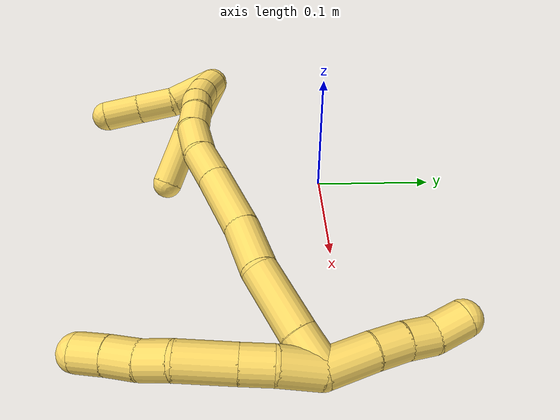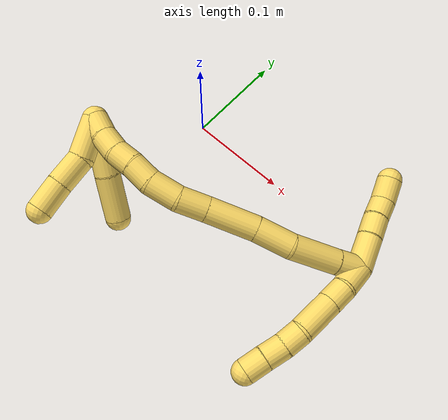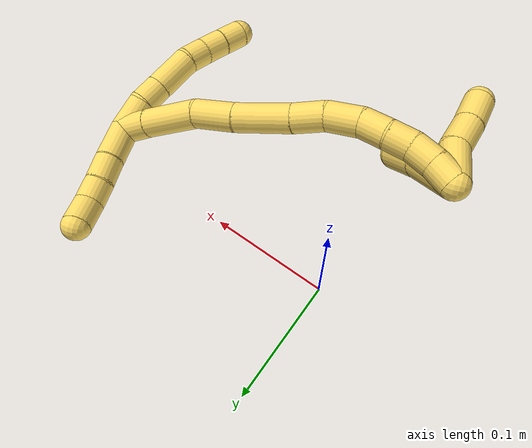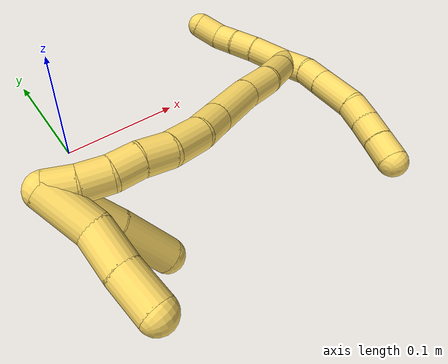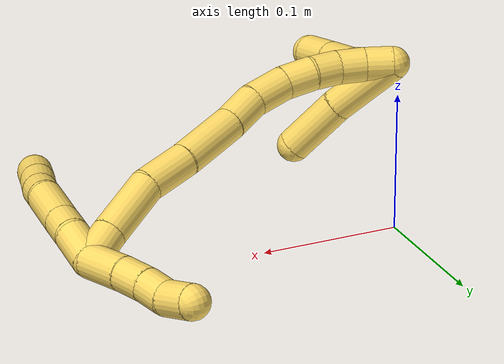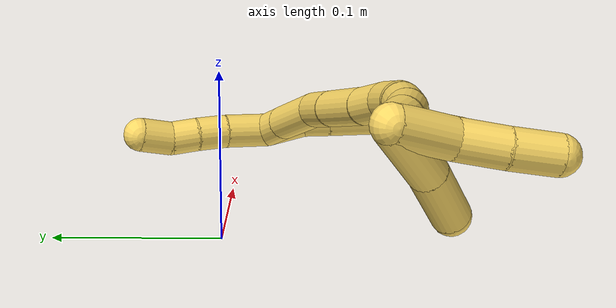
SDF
<sdf version="1.7">
 <world name="default">
  <model name="5">
   <static>0</static>
   <link name="5">
    <collision name="collision-cylinder-e_1_2_8">
     <pose>-0.013197 -0.004792 -0.003114 2.14697 -1.16212 -1.76008</pose>
     <geometry><cylinder><radius>0.0125</radius><length>0.028762</length></cylinder></geometry>
     <surface>
      <friction><ode><mu>1.16</mu><mu2>1.16</mu2><slip1>0</slip1><slip2>0</slip2></ode></friction>
      <contact><ode><kp>1e+06</kp><kd>1</kd><max_vel>0</max_vel><min_depth>0.001</min_depth></ode></contact>
     </surface>
    </collision>
    <visual name="visual-cylinder-e_1_2_8">
     <pose>-0.013197 -0.004792 -0.003114 2.14697 -1.16212 -1.76008</pose>
     <geometry><cylinder><radius>0.0125</radius><length>0.028762</length></cylinder></geometry>
     <material><ambient>1 0.858824 0.4 1</ambient></material>
    </visual>
    <collision name="collision-cylinder-e_2_8_9">
     <pose>-0.034774 -0.014955 -0.009597 2.13115 -0.923188 -1.46491</pose>
     <geometry><cylinder><radius>0.0125</radius><length>0.021018</length></cylinder></geometry>
     <surface>
      <friction><ode><mu>1.16</mu><mu2>1.16</mu2><slip1>0</slip1><slip2>0</slip2></ode></friction>
      <contact><ode><kp>1e+06</kp><kd>1</kd><max_vel>0</max_vel><min_depth>0.001</min_depth></ode></contact>
     </surface>
    </collision>
    <visual name="visual-cylinder-e_2_8_9">
     <pose>-0.034774 -0.014955 -0.009597 2.13115 -0.923188 -1.46491</pose>
     <geometry><cylinder><radius>0.0125</radius><length>0.021018</length></cylinder></geometry>
     <material><ambient>1 0.858824 0.4 1</ambient></material>
    </visual>
    <collision name="collision-cylinder-e_3_9_10">
     <pose>-0.058345 -0.029752 -0.019131 2.14996 -0.932719 -1.49903</pose>
     <geometry><cylinder><radius>0.0125</radius><length>0.037821</length></cylinder></geometry>
     <surface>
      <friction><ode><mu>1.16</mu><mu2>1.16</mu2><slip1>0</slip1><slip2>0</slip2></ode></friction>
      <contact><ode><kp>1e+06</kp><kd>1</kd><max_vel>0</max_vel><min_depth>0.001</min_depth></ode></contact>
     </surface>
    </collision>
    <visual name="visual-cylinder-e_3_9_10">
     <pose>-0.058345 -0.029752 -0.019131 2.14996 -0.932719 -1.49903</pose>
     <geometry><cylinder><radius>0.0125</radius><length>0.037821</length></cylinder></geometry>
     <material><ambient>1 0.858824 0.4 1</ambient></material>
    </visual>
    <collision name="collision-cylinder-e_4_10_11">
     <pose>-0.079868 -0.045809 -0.02965 2.15188 -0.673834 -1.15146</pose>
     <geometry><cylinder><radius>0.0125</radius><length>0.020301</length></cylinder></geometry>
     <surface>
      <friction><ode><mu>1.16</mu><mu2>1.16</mu2><slip1>0</slip1><slip2>0</slip2></ode></friction>
      <contact><ode><kp>1e+06</kp><kd>1</kd><max_vel>0</max_vel><min_depth>0.001</min_depth></ode></contact>
     </surface>
    </collision>
    <visual name="visual-cylinder-e_4_10_11">
     <pose>-0.079868 -0.045809 -0.02965 2.15188 -0.673834 -1.15146</pose>
     <geometry><cylinder><radius>0.0125</radius><length>0.020301</length></cylinder></geometry>
     <material><ambient>1 0.858824 0.4 1</ambient></material>
    </visual>
    <collision name="collision-cylinder-e_5_11_12">
     <pose>-0.092787 -0.05837 -0.039509 2.31893 -0.683055 -1.36747</pose>
     <geometry><cylinder><radius>0.0125</radius><length>0.020864</length></cylinder></geometry>
     <surface>
      <friction><ode><mu>1.16</mu><mu2>1.16</mu2><slip1>0</slip1><slip2>0</slip2></ode></friction>
      <contact><ode><kp>1e+06</kp><kd>1</kd><max_vel>0</max_vel><min_depth>0.001</min_depth></ode></contact>
     </surface>
    </collision>
    <visual name="visual-cylinder-e_5_11_12">
     <pose>-0.092787 -0.05837 -0.039509 2.31893 -0.683055 -1.36747</pose>
     <geometry><cylinder><radius>0.0125</radius><length>0.020864</length></cylinder></geometry>
     <material><ambient>1 0.858824 0.4 1</ambient></material>
    </visual>
    <collision name="collision-cylinder-e_6_12_6">
     <pose>-0.10595 -0.070712 -0.050338 2.26387 -0.668271 -1.2736</pose>
     <geometry><cylinder><radius>0.0125</radius><length>0.021235</length></cylinder></geometry>
     <surface>
      <friction><ode><mu>1.16</mu><mu2>1.16</mu2><slip1>0</slip1><slip2>0</slip2></ode></friction>
      <contact><ode><kp>1e+06</kp><kd>1</kd><max_vel>0</max_vel><min_depth>0.001</min_depth></ode></contact>
     </surface>
    </collision>
    <visual name="visual-cylinder-e_6_12_6">
     <pose>-0.10595 -0.070712 -0.050338 2.26387 -0.668271 -1.2736</pose>
     <geometry><cylinder><radius>0.0125</radius><length>0.021235</length></cylinder></geometry>
     <material><ambient>1 0.858824 0.4 1</ambient></material>
    </visual>
    <collision name="collision-cylinder-e_1_2_13">
     <pose>0.013403 0.010213 -0.001342 -1.70148 0.915543 -1.02351</pose>
     <geometry><cylinder><radius>0.0125</radius><length>0.033807</length></cylinder></geometry>
     <surface>
      <friction><ode><mu>1.16</mu><mu2>1.16</mu2><slip1>0</slip1><slip2>0</slip2></ode></friction>
      <contact><ode><kp>1e+06</kp><kd>1</kd><max_vel>0</max_vel><min_depth>0.001</min_depth></ode></contact>
     </surface>
    </collision>
    <visual name="visual-cylinder-e_1_2_13">
     <pose>0.013403 0.010213 -0.001342 -1.70148 0.915543 -1.02351</pose>
     <geometry><cylinder><radius>0.0125</radius><length>0.033807</length></cylinder></geometry>
     <material><ambient>1 0.858824 0.4 1</ambient></material>
    </visual>
    <collision name="collision-cylinder-e_2_13_14">
     <pose>0.036098 0.026418 -0.0036 -1.72242 0.99271 -1.12525</pose>
     <geometry><cylinder><radius>0.0125</radius><length>0.022191</length></cylinder></geometry>
     <surface>
      <friction><ode><mu>1.16</mu><mu2>1.16</mu2><slip1>0</slip1><slip2>0</slip2></ode></friction>
      <contact><ode><kp>1e+06</kp><kd>1</kd><max_vel>0</max_vel><min_depth>0.001</min_depth></ode></contact>
     </surface>
    </collision>
    <visual name="visual-cylinder-e_2_13_14">
     <pose>0.036098 0.026418 -0.0036 -1.72242 0.99271 -1.12525</pose>
     <geometry><cylinder><radius>0.0125</radius><length>0.022191</length></cylinder></geometry>
     <material><ambient>1 0.858824 0.4 1</ambient></material>
    </visual>
    <collision name="collision-cylinder-e_3_14_15">
     <pose>0.054184 0.037334 -0.004599 -1.58758 1.06047 -1.07518</pose>
     <geometry><cylinder><radius>0.0125</radius><length>0.020156</length></cylinder></geometry>
     <surface>
      <friction><ode><mu>1.16</mu><mu2>1.16</mu2><slip1>0</slip1><slip2>0</slip2></ode></friction>
      <contact><ode><kp>1e+06</kp><kd>1</kd><max_vel>0</max_vel><min_depth>0.001</min_depth></ode></contact>
     </surface>
    </collision>
    <visual name="visual-cylinder-e_3_14_15">
     <pose>0.054184 0.037334 -0.004599 -1.58758 1.06047 -1.07518</pose>
     <geometry><cylinder><radius>0.0125</radius><length>0.020156</length></cylinder></geometry>
     <material><ambient>1 0.858824 0.4 1</ambient></material>
    </visual>
    <collision name="collision-cylinder-e_4_15_5">
     <pose>0.071074 0.050905 -0.006024 -1.72484 0.746449 -0.857437</pose>
     <geometry><cylinder><radius>0.0125</radius><length>0.023846</length></cylinder></geometry>
     <surface>
      <friction><ode><mu>1.16</mu><mu2>1.16</mu2><slip1>0</slip1><slip2>0</slip2></ode></friction>
      <contact><ode><kp>1e+06</kp><kd>1</kd><max_vel>0</max_vel><min_depth>0.001</min_depth></ode></contact>
     </surface>
    </collision>
    <visual name="visual-cylinder-e_4_15_5">
     <pose>0.071074 0.050905 -0.006024 -1.72484 0.746449 -0.857437</pose>
     <geometry><cylinder><radius>0.0125</radius><length>0.023846</length></cylinder></geometry>
     <material><ambient>1 0.858824 0.4 1</ambient></material>
    </visual>
    <collision name="collision-cylinder-e_1_2_16">
     <pose>-0.005792 0.001954 -0.011271 -2.96995 -0.468717 2.44985</pose>
     <geometry><cylinder><radius>0.0125</radius><length>0.025644</length></cylinder></geometry>
     <surface>
      <friction><ode><mu>1.16</mu><mu2>1.16</mu2><slip1>0</slip1><slip2>0</slip2></ode></friction>
      <contact><ode><kp>1e+06</kp><kd>1</kd><max_vel>0</max_vel><min_depth>0.001</min_depth></ode></contact>
     </surface>
    </collision>
    <visual name="visual-cylinder-e_1_2_16">
     <pose>-0.005792 0.001954 -0.011271 -2.96995 -0.468717 2.44985</pose>
     <geometry><cylinder><radius>0.0125</radius><length>0.025644</length></cylinder></geometry>
     <material><ambient>1 0.858824 0.4 1</ambient></material>
    </visual>
    <collision name="collision-cylinder-e_2_16_17">
     <pose>-0.021368 0.007659 -0.044097 -2.9693 -0.420509 2.37252</pose>
     <geometry><cylinder><radius>0.0125</radius><length>0.047933</length></cylinder></geometry>
     <surface>
      <friction><ode><mu>1.16</mu><mu2>1.16</mu2><slip1>0</slip1><slip2>0</slip2></ode></friction>
      <contact><ode><kp>1e+06</kp><kd>1</kd><max_vel>0</max_vel><min_depth>0.001</min_depth></ode></contact>
     </surface>
    </collision>
    <visual name="visual-cylinder-e_2_16_17">
     <pose>-0.021368 0.007659 -0.044097 -2.9693 -0.420509 2.37252</pose>
     <geometry><cylinder><radius>0.0125</radius><length>0.047933</length></cylinder></geometry>
     <material><ambient>1 0.858824 0.4 1</ambient></material>
    </visual>
    <collision name="collision-cylinder-e_3_17_18">
     <pose>-0.033934 0.013914 -0.083352 -3.00104 -0.154399 1.66495</pose>
     <geometry><cylinder><radius>0.0125</radius><length>0.036185</length></cylinder></geometry>
     <surface>
      <friction><ode><mu>1.16</mu><mu2>1.16</mu2><slip1>0</slip1><slip2>0</slip2></ode></friction>
      <contact><ode><kp>1e+06</kp><kd>1</kd><max_vel>0</max_vel><min_depth>0.001</min_depth></ode></contact>
     </surface>
    </collision>
    <visual name="visual-cylinder-e_3_17_18">
     <pose>-0.033934 0.013914 -0.083352 -3.00104 -0.154399 1.66495</pose>
     <geometry><cylinder><radius>0.0125</radius><length>0.036185</length></cylinder></geometry>
     <material><ambient>1 0.858824 0.4 1</ambient></material>
    </visual>
    <collision name="collision-cylinder-e_4_18_19">
     <pose>-0.042557 0.018575 -0.124801 -3.05105 -0.240182 2.42332</pose>
     <geometry><cylinder><radius>0.0125</radius><length>0.049101</length></cylinder></geometry>
     <surface>
      <friction><ode><mu>1.16</mu><mu2>1.16</mu2><slip1>0</slip1><slip2>0</slip2></ode></friction>
      <contact><ode><kp>1e+06</kp><kd>1</kd><max_vel>0</max_vel><min_depth>0.001</min_depth></ode></contact>
     </surface>
    </collision>
    <visual name="visual-cylinder-e_4_18_19">
     <pose>-0.042557 0.018575 -0.124801 -3.05105 -0.240182 2.42332</pose>
     <geometry><cylinder><radius>0.0125</radius><length>0.049101</length></cylinder></geometry>
     <material><ambient>1 0.858824 0.4 1</ambient></material>
    </visual>
    <collision name="collision-cylinder-e_5_19_20">
     <pose>-0.052803 0.022328 -0.161694 -3.02065 -0.321201 2.42626</pose>
     <geometry><cylinder><radius>0.0125</radius><length>0.027911</length></cylinder></geometry>
     <surface>
      <friction><ode><mu>1.16</mu><mu2>1.16</mu2><slip1>0</slip1><slip2>0</slip2></ode></friction>
      <contact><ode><kp>1e+06</kp><kd>1</kd><max_vel>0</max_vel><min_depth>0.001</min_depth></ode></contact>
     </surface>
    </collision>
    <visual name="visual-cylinder-e_5_19_20">
     <pose>-0.052803 0.022328 -0.161694 -3.02065 -0.321201 2.42626</pose>
     <geometry><cylinder><radius>0.0125</radius><length>0.027911</length></cylinder></geometry>
     <material><ambient>1 0.858824 0.4 1</ambient></material>
    </visual>
    <collision name="collision-cylinder-e_6_20_21">
     <pose>-0.058249 0.026425 -0.189097 -2.96806 -0.071771 0.782871</pose>
     <geometry><cylinder><radius>0.0125</radius><length>0.029025</length></cylinder></geometry>
     <surface>
      <friction><ode><mu>1.16</mu><mu2>1.16</mu2><slip1>0</slip1><slip2>0</slip2></ode></friction>
      <contact><ode><kp>1e+06</kp><kd>1</kd><max_vel>0</max_vel><min_depth>0.001</min_depth></ode></contact>
     </surface>
    </collision>
    <visual name="visual-cylinder-e_6_20_21">
     <pose>-0.058249 0.026425 -0.189097 -2.96806 -0.071771 0.782871</pose>
     <geometry><cylinder><radius>0.0125</radius><length>0.029025</length></cylinder></geometry>
     <material><ambient>1 0.858824 0.4 1</ambient></material>
    </visual>
    <collision name="collision-cylinder-e_7_21_22">
     <pose>-0.057388 0.032205 -0.214164 -2.84694 0.166778 -1.02587</pose>
     <geometry><cylinder><radius>0.0125</radius><length>0.022911</length></cylinder></geometry>
     <surface>
      <friction><ode><mu>1.16</mu><mu2>1.16</mu2><slip1>0</slip1><slip2>0</slip2></ode></friction>
      <contact><ode><kp>1e+06</kp><kd>1</kd><max_vel>0</max_vel><min_depth>0.001</min_depth></ode></contact>
     </surface>
    </collision>
    <visual name="visual-cylinder-e_7_21_22">
     <pose>-0.057388 0.032205 -0.214164 -2.84694 0.166778 -1.02587</pose>
     <geometry><cylinder><radius>0.0125</radius><length>0.022911</length></cylinder></geometry>
     <material><ambient>1 0.858824 0.4 1</ambient></material>
    </visual>
    <collision name="collision-cylinder-e_8_22_23">
     <pose>-0.05359 0.036809 -0.234799 -3.00776 0.188981 -1.9106</pose>
     <geometry><cylinder><radius>0.0125</radius><length>0.020186</length></cylinder></geometry>
     <surface>
      <friction><ode><mu>1.16</mu><mu2>1.16</mu2><slip1>0</slip1><slip2>0</slip2></ode></friction>
      <contact><ode><kp>1e+06</kp><kd>1</kd><max_vel>0</max_vel><min_depth>0.001</min_depth></ode></contact>
     </surface>
    </collision>
    <visual name="visual-cylinder-e_8_22_23">
     <pose>-0.05359 0.036809 -0.234799 -3.00776 0.188981 -1.9106</pose>
     <geometry><cylinder><radius>0.0125</radius><length>0.020186</length></cylinder></geometry>
     <material><ambient>1 0.858824 0.4 1</ambient></material>
    </visual>
    <collision name="collision-cylinder-e_9_23_24">
     <pose>-0.047792 0.040659 -0.253873 -2.87483 0.386478 -1.93947</pose>
     <geometry><cylinder><radius>0.0125</radius><length>0.020704</length></cylinder></geometry>
     <surface>
      <friction><ode><mu>1.16</mu><mu2>1.16</mu2><slip1>0</slip1><slip2>0</slip2></ode></friction>
      <contact><ode><kp>1e+06</kp><kd>1</kd><max_vel>0</max_vel><min_depth>0.001</min_depth></ode></contact>
     </surface>
    </collision>
    <visual name="visual-cylinder-e_9_23_24">
     <pose>-0.047792 0.040659 -0.253873 -2.87483 0.386478 -1.93947</pose>
     <geometry><cylinder><radius>0.0125</radius><length>0.020704</length></cylinder></geometry>
     <material><ambient>1 0.858824 0.4 1</ambient></material>
    </visual>
    <collision name="collision-cylinder-e_10_24_1">
     <pose>-0.038798 0.04652 -0.271308 -2.75485 0.52266 -1.87761</pose>
     <geometry><cylinder><radius>0.0125</radius><length>0.0204</length></cylinder></geometry>
     <surface>
      <friction><ode><mu>1.16</mu><mu2>1.16</mu2><slip1>0</slip1><slip2>0</slip2></ode></friction>
      <contact><ode><kp>1e+06</kp><kd>1</kd><max_vel>0</max_vel><min_depth>0.001</min_depth></ode></contact>
     </surface>
    </collision>
    <visual name="visual-cylinder-e_10_24_1">
     <pose>-0.038798 0.04652 -0.271308 -2.75485 0.52266 -1.87761</pose>
     <geometry><cylinder><radius>0.0125</radius><length>0.0204</length></cylinder></geometry>
     <material><ambient>1 0.858824 0.4 1</ambient></material>
    </visual>
    <collision name="collision-cylinder-e_1_1_25">
     <pose>-0.036701 0.026552 -0.266396 1.05871 -0.111542 -0.065302</pose>
     <geometry><cylinder><radius>0.0125</radius><length>0.053795</length></cylinder></geometry>
     <surface>
      <friction><ode><mu>1.16</mu><mu2>1.16</mu2><slip1>0</slip1><slip2>0</slip2></ode></friction>
      <contact><ode><kp>1e+06</kp><kd>1</kd><max_vel>0</max_vel><min_depth>0.001</min_depth></ode></contact>
     </surface>
    </collision>
    <visual name="visual-cylinder-e_1_1_25">
     <pose>-0.036701 0.026552 -0.266396 1.05871 -0.111542 -0.065302</pose>
     <geometry><cylinder><radius>0.0125</radius><length>0.053795</length></cylinder></geometry>
     <material><ambient>1 0.858824 0.4 1</ambient></material>
    </visual>
    <collision name="collision-cylinder-e_2_25_4">
     <pose>-0.04016 -0.01722 -0.242599 1.0892 -0.020158 -0.01221</pose>
     <geometry><cylinder><radius>0.0125</radius><length>0.046205</length></cylinder></geometry>
     <surface>
      <friction><ode><mu>1.16</mu><mu2>1.16</mu2><slip1>0</slip1><slip2>0</slip2></ode></friction>
      <contact><ode><kp>1e+06</kp><kd>1</kd><max_vel>0</max_vel><min_depth>0.001</min_depth></ode></contact>
     </surface>
    </collision>
    <visual name="visual-cylinder-e_2_25_4">
     <pose>-0.04016 -0.01722 -0.242599 1.0892 -0.020158 -0.01221</pose>
     <geometry><cylinder><radius>0.0125</radius><length>0.046205</length></cylinder></geometry>
     <material><ambient>1 0.858824 0.4 1</ambient></material>
    </visual>
    <collision name="collision-cylinder-e_1_1_26">
     <pose>-0.04591 0.034683 -0.277033 1.41004 -0.671076 -0.576912</pose>
     <geometry><cylinder><radius>0.0125</radius><length>0.039249</length></cylinder></geometry>
     <surface>
      <friction><ode><mu>1.16</mu><mu2>1.16</mu2><slip1>0</slip1><slip2>0</slip2></ode></friction>
      <contact><ode><kp>1e+06</kp><kd>1</kd><max_vel>0</max_vel><min_depth>0.001</min_depth></ode></contact>
     </surface>
    </collision>
    <visual name="visual-cylinder-e_1_1_26">
     <pose>-0.04591 0.034683 -0.277033 1.41004 -0.671076 -0.576912</pose>
     <geometry><cylinder><radius>0.0125</radius><length>0.039249</length></cylinder></geometry>
     <material><ambient>1 0.858824 0.4 1</ambient></material>
    </visual>
    <collision name="collision-cylinder-e_2_26_27">
     <pose>-0.068572 0.008781 -0.277719 1.85592 -0.75197 -0.970154</pose>
     <geometry><cylinder><radius>0.0125</radius><length>0.030622</length></cylinder></geometry>
     <surface>
      <friction><ode><mu>1.16</mu><mu2>1.16</mu2><slip1>0</slip1><slip2>0</slip2></ode></friction>
      <contact><ode><kp>1e+06</kp><kd>1</kd><max_vel>0</max_vel><min_depth>0.001</min_depth></ode></contact>
     </surface>
    </collision>
    <visual name="visual-cylinder-e_2_26_27">
     <pose>-0.068572 0.008781 -0.277719 1.85592 -0.75197 -0.970154</pose>
     <geometry><cylinder><radius>0.0125</radius><length>0.030622</length></cylinder></geometry>
     <material><ambient>1 0.858824 0.4 1</ambient></material>
    </visual>
    <collision name="collision-cylinder-e_3_27_3">
     <pose>-0.089733 -0.012358 -0.282883 1.76242 -0.790131 -0.936334</pose>
     <geometry><cylinder><radius>0.0125</radius><length>0.030128</length></cylinder></geometry>
     <surface>
      <friction><ode><mu>1.16</mu><mu2>1.16</mu2><slip1>0</slip1><slip2>0</slip2></ode></friction>
      <contact><ode><kp>1e+06</kp><kd>1</kd><max_vel>0</max_vel><min_depth>0.001</min_depth></ode></contact>
     </surface>
    </collision>
    <visual name="visual-cylinder-e_3_27_3">
     <pose>-0.089733 -0.012358 -0.282883 1.76242 -0.790131 -0.936334</pose>
     <geometry><cylinder><radius>0.0125</radius><length>0.030128</length></cylinder></geometry>
     <material><ambient>1 0.858824 0.4 1</ambient></material>
    </visual>
    <collision name="collision-sphere-3">
     <pose>-0.100435 -0.022765 -0.284902 0 -0 0</pose>
     <geometry><sphere><radius>0.0125</radius></sphere></geometry>
     <surface>
      <friction><ode><mu>1.16</mu><mu2>1.16</mu2><slip1>0</slip1><slip2>0</slip2></ode></friction>
      <contact><ode><kp>1e+06</kp><kd>1</kd><max_vel>0</max_vel><min_depth>0.001</min_depth></ode></contact>
     </surface>
    </collision>
    <visual name="visual-sphere-3">
     <pose>-0.100435 -0.022765 -0.284902 0 -0 0</pose>
     <geometry><sphere><radius>0.0125</radius></sphere></geometry>
     <material><ambient>1 0.858824 0.4 1</ambient></material>
    </visual>
    <collision name="collision-sphere-27">
     <pose>-0.079031 -0.00195 -0.280864 0 -0 0</pose>
     <geometry><sphere><radius>0.0125</radius></sphere></geometry>
     <surface>
      <friction><ode><mu>1.16</mu><mu2>1.16</mu2><slip1>0</slip1><slip2>0</slip2></ode></friction>
      <contact><ode><kp>1e+06</kp><kd>1</kd><max_vel>0</max_vel><min_depth>0.001</min_depth></ode></contact>
     </surface>
    </collision>
    <visual name="visual-sphere-27">
     <pose>-0.079031 -0.00195 -0.280864 0 -0 0</pose>
     <geometry><sphere><radius>0.0125</radius></sphere></geometry>
     <material><ambient>1 0.858824 0.4 1</ambient></material>
    </visual>
    <collision name="collision-sphere-26">
     <pose>-0.058113 0.019512 -0.274573 0 -0 0</pose>
     <geometry><sphere><radius>0.0125</radius></sphere></geometry>
     <surface>
      <friction><ode><mu>1.16</mu><mu2>1.16</mu2><slip1>0</slip1><slip2>0</slip2></ode></friction>
      <contact><ode><kp>1e+06</kp><kd>1</kd><max_vel>0</max_vel><min_depth>0.001</min_depth></ode></contact>
     </surface>
    </collision>
    <visual name="visual-sphere-26">
     <pose>-0.058113 0.019512 -0.274573 0 -0 0</pose>
     <geometry><sphere><radius>0.0125</radius></sphere></geometry>
     <material><ambient>1 0.858824 0.4 1</ambient></material>
    </visual>
    <collision name="collision-sphere-4">
     <pose>-0.040626 -0.037691 -0.2319 0 -0 0</pose>
     <geometry><sphere><radius>0.0125</radius></sphere></geometry>
     <surface>
      <friction><ode><mu>1.16</mu><mu2>1.16</mu2><slip1>0</slip1><slip2>0</slip2></ode></friction>
      <contact><ode><kp>1e+06</kp><kd>1</kd><max_vel>0</max_vel><min_depth>0.001</min_depth></ode></contact>
     </surface>
    </collision>
    <visual name="visual-sphere-4">
     <pose>-0.040626 -0.037691 -0.2319 0 -0 0</pose>
     <geometry><sphere><radius>0.0125</radius></sphere></geometry>
     <material><ambient>1 0.858824 0.4 1</ambient></material>
    </visual>
    <collision name="collision-sphere-25">
     <pose>-0.039695 0.003251 -0.253298 0 -0 0</pose>
     <geometry><sphere><radius>0.0125</radius></sphere></geometry>
     <surface>
      <friction><ode><mu>1.16</mu><mu2>1.16</mu2><slip1>0</slip1><slip2>0</slip2></ode></friction>
      <contact><ode><kp>1e+06</kp><kd>1</kd><max_vel>0</max_vel><min_depth>0.001</min_depth></ode></contact>
     </surface>
    </collision>
    <visual name="visual-sphere-25">
     <pose>-0.039695 0.003251 -0.253298 0 -0 0</pose>
     <geometry><sphere><radius>0.0125</radius></sphere></geometry>
     <material><ambient>1 0.858824 0.4 1</ambient></material>
    </visual>
    <collision name="collision-sphere-1">
     <pose>-0.033707 0.049854 -0.279493 0 -0 0</pose>
     <geometry><sphere><radius>0.0125</radius></sphere></geometry>
     <surface>
      <friction><ode><mu>1.16</mu><mu2>1.16</mu2><slip1>0</slip1><slip2>0</slip2></ode></friction>
      <contact><ode><kp>1e+06</kp><kd>1</kd><max_vel>0</max_vel><min_depth>0.001</min_depth></ode></contact>
     </surface>
    </collision>
    <visual name="visual-sphere-1">
     <pose>-0.033707 0.049854 -0.279493 0 -0 0</pose>
     <geometry><sphere><radius>0.0125</radius></sphere></geometry>
     <material><ambient>1 0.858824 0.4 1</ambient></material>
    </visual>
    <collision name="collision-sphere-24">
     <pose>-0.04389 0.043187 -0.263123 0 -0 0</pose>
     <geometry><sphere><radius>0.0125</radius></sphere></geometry>
     <surface>
      <friction><ode><mu>1.16</mu><mu2>1.16</mu2><slip1>0</slip1><slip2>0</slip2></ode></friction>
      <contact><ode><kp>1e+06</kp><kd>1</kd><max_vel>0</max_vel><min_depth>0.001</min_depth></ode></contact>
     </surface>
    </collision>
    <visual name="visual-sphere-24">
     <pose>-0.04389 0.043187 -0.263123 0 -0 0</pose>
     <geometry><sphere><radius>0.0125</radius></sphere></geometry>
     <material><ambient>1 0.858824 0.4 1</ambient></material>
    </visual>
    <collision name="collision-sphere-23">
     <pose>-0.051694 0.038131 -0.244624 0 -0 0</pose>
     <geometry><sphere><radius>0.0125</radius></sphere></geometry>
     <surface>
      <friction><ode><mu>1.16</mu><mu2>1.16</mu2><slip1>0</slip1><slip2>0</slip2></ode></friction>
      <contact><ode><kp>1e+06</kp><kd>1</kd><max_vel>0</max_vel><min_depth>0.001</min_depth></ode></contact>
     </surface>
    </collision>
    <visual name="visual-sphere-23">
     <pose>-0.051694 0.038131 -0.244624 0 -0 0</pose>
     <geometry><sphere><radius>0.0125</radius></sphere></geometry>
     <material><ambient>1 0.858824 0.4 1</ambient></material>
    </visual>
    <collision name="collision-sphere-22">
     <pose>-0.055486 0.035486 -0.224974 0 -0 0</pose>
     <geometry><sphere><radius>0.0125</radius></sphere></geometry>
     <surface>
      <friction><ode><mu>1.16</mu><mu2>1.16</mu2><slip1>0</slip1><slip2>0</slip2></ode></friction>
      <contact><ode><kp>1e+06</kp><kd>1</kd><max_vel>0</max_vel><min_depth>0.001</min_depth></ode></contact>
     </surface>
    </collision>
    <visual name="visual-sphere-22">
     <pose>-0.055486 0.035486 -0.224974 0 -0 0</pose>
     <geometry><sphere><radius>0.0125</radius></sphere></geometry>
     <material><ambient>1 0.858824 0.4 1</ambient></material>
    </visual>
    <collision name="collision-sphere-21">
     <pose>-0.05929 0.028924 -0.203354 0 -0 0</pose>
     <geometry><sphere><radius>0.0125</radius></sphere></geometry>
     <surface>
      <friction><ode><mu>1.16</mu><mu2>1.16</mu2><slip1>0</slip1><slip2>0</slip2></ode></friction>
      <contact><ode><kp>1e+06</kp><kd>1</kd><max_vel>0</max_vel><min_depth>0.001</min_depth></ode></contact>
     </surface>
    </collision>
    <visual name="visual-sphere-21">
     <pose>-0.05929 0.028924 -0.203354 0 -0 0</pose>
     <geometry><sphere><radius>0.0125</radius></sphere></geometry>
     <material><ambient>1 0.858824 0.4 1</ambient></material>
    </visual>
    <collision name="collision-sphere-12">
     <pose>-0.099371 -0.064301 -0.045013 0 -0 0</pose>
     <geometry><sphere><radius>0.0125</radius></sphere></geometry>
     <surface>
      <friction><ode><mu>1.16</mu><mu2>1.16</mu2><slip1>0</slip1><slip2>0</slip2></ode></friction>
      <contact><ode><kp>1e+06</kp><kd>1</kd><max_vel>0</max_vel><min_depth>0.001</min_depth></ode></contact>
     </surface>
    </collision>
    <visual name="visual-sphere-12">
     <pose>-0.099371 -0.064301 -0.045013 0 -0 0</pose>
     <geometry><sphere><radius>0.0125</radius></sphere></geometry>
     <material><ambient>1 0.858824 0.4 1</ambient></material>
    </visual>
    <collision name="collision-sphere-11">
     <pose>-0.086202 -0.052439 -0.034005 0 -0 0</pose>
     <geometry><sphere><radius>0.0125</radius></sphere></geometry>
     <surface>
      <friction><ode><mu>1.16</mu><mu2>1.16</mu2><slip1>0</slip1><slip2>0</slip2></ode></friction>
      <contact><ode><kp>1e+06</kp><kd>1</kd><max_vel>0</max_vel><min_depth>0.001</min_depth></ode></contact>
     </surface>
    </collision>
    <visual name="visual-sphere-11">
     <pose>-0.086202 -0.052439 -0.034005 0 -0 0</pose>
     <geometry><sphere><radius>0.0125</radius></sphere></geometry>
     <material><ambient>1 0.858824 0.4 1</ambient></material>
    </visual>
    <collision name="collision-sphere-10">
     <pose>-0.073535 -0.039179 -0.025296 0 -0 0</pose>
     <geometry><sphere><radius>0.0125</radius></sphere></geometry>
     <surface>
      <friction><ode><mu>1.16</mu><mu2>1.16</mu2><slip1>0</slip1><slip2>0</slip2></ode></friction>
      <contact><ode><kp>1e+06</kp><kd>1</kd><max_vel>0</max_vel><min_depth>0.001</min_depth></ode></contact>
     </surface>
    </collision>
    <visual name="visual-sphere-10">
     <pose>-0.073535 -0.039179 -0.025296 0 -0 0</pose>
     <geometry><sphere><radius>0.0125</radius></sphere></geometry>
     <material><ambient>1 0.858824 0.4 1</ambient></material>
    </visual>
    <collision name="collision-sphere-9">
     <pose>-0.043155 -0.020325 -0.012966 0 -0 0</pose>
     <geometry><sphere><radius>0.0125</radius></sphere></geometry>
     <surface>
      <friction><ode><mu>1.16</mu><mu2>1.16</mu2><slip1>0</slip1><slip2>0</slip2></ode></friction>
      <contact><ode><kp>1e+06</kp><kd>1</kd><max_vel>0</max_vel><min_depth>0.001</min_depth></ode></contact>
     </surface>
    </collision>
    <visual name="visual-sphere-9">
     <pose>-0.043155 -0.020325 -0.012966 0 -0 0</pose>
     <geometry><sphere><radius>0.0125</radius></sphere></geometry>
     <material><ambient>1 0.858824 0.4 1</ambient></material>
    </visual>
    <collision name="collision-sphere-2">
     <geometry><sphere><radius>0.0125</radius></sphere></geometry>
     <surface>
      <friction><ode><mu>1.16</mu><mu2>1.16</mu2><slip1>0</slip1><slip2>0</slip2></ode></friction>
      <contact><ode><kp>1e+06</kp><kd>1</kd><max_vel>0</max_vel><min_depth>0.001</min_depth></ode></contact>
     </surface>
    </collision>
    <visual name="visual-sphere-2">
     <geometry><sphere><radius>0.0125</radius></sphere></geometry>
     <material><ambient>1 0.858824 0.4 1</ambient></material>
    </visual>
    <collision name="collision-sphere-19">
     <pose>-0.048397 0.020731 -0.148549 0 -0 0</pose>
     <geometry><sphere><radius>0.0125</radius></sphere></geometry>
     <surface>
      <friction><ode><mu>1.16</mu><mu2>1.16</mu2><slip1>0</slip1><slip2>0</slip2></ode></friction>
      <contact><ode><kp>1e+06</kp><kd>1</kd><max_vel>0</max_vel><min_depth>0.001</min_depth></ode></contact>
     </surface>
    </collision>
    <visual name="visual-sphere-19">
     <pose>-0.048397 0.020731 -0.148549 0 -0 0</pose>
     <geometry><sphere><radius>0.0125</radius></sphere></geometry>
     <material><ambient>1 0.858824 0.4 1</ambient></material>
    </visual>
    <collision name="collision-sphere-8">
     <pose>-0.026393 -0.009585 -0.006227 0 -0 0</pose>
     <geometry><sphere><radius>0.0125</radius></sphere></geometry>
     <surface>
      <friction><ode><mu>1.16</mu><mu2>1.16</mu2><slip1>0</slip1><slip2>0</slip2></ode></friction>
      <contact><ode><kp>1e+06</kp><kd>1</kd><max_vel>0</max_vel><min_depth>0.001</min_depth></ode></contact>
     </surface>
    </collision>
    <visual name="visual-sphere-8">
     <pose>-0.026393 -0.009585 -0.006227 0 -0 0</pose>
     <geometry><sphere><radius>0.0125</radius></sphere></geometry>
     <material><ambient>1 0.858824 0.4 1</ambient></material>
    </visual>
    <collision name="collision-sphere-6">
     <pose>-0.112528 -0.077123 -0.055662 0 -0 0</pose>
     <geometry><sphere><radius>0.0125</radius></sphere></geometry>
     <surface>
      <friction><ode><mu>1.16</mu><mu2>1.16</mu2><slip1>0</slip1><slip2>0</slip2></ode></friction>
      <contact><ode><kp>1e+06</kp><kd>1</kd><max_vel>0</max_vel><min_depth>0.001</min_depth></ode></contact>
     </surface>
    </collision>
    <visual name="visual-sphere-6">
     <pose>-0.112528 -0.077123 -0.055662 0 -0 0</pose>
     <geometry><sphere><radius>0.0125</radius></sphere></geometry>
     <material><ambient>1 0.858824 0.4 1</ambient></material>
    </visual>
    <collision name="collision-sphere-13">
     <pose>0.026806 0.020425 -0.002685 0 -0 0</pose>
     <geometry><sphere><radius>0.0125</radius></sphere></geometry>
     <surface>
      <friction><ode><mu>1.16</mu><mu2>1.16</mu2><slip1>0</slip1><slip2>0</slip2></ode></friction>
      <contact><ode><kp>1e+06</kp><kd>1</kd><max_vel>0</max_vel><min_depth>0.001</min_depth></ode></contact>
     </surface>
    </collision>
    <visual name="visual-sphere-13">
     <pose>0.026806 0.020425 -0.002685 0 -0 0</pose>
     <geometry><sphere><radius>0.0125</radius></sphere></geometry>
     <material><ambient>1 0.858824 0.4 1</ambient></material>
    </visual>
    <collision name="collision-sphere-14">
     <pose>0.045391 0.032412 -0.004516 0 -0 0</pose>
     <geometry><sphere><radius>0.0125</radius></sphere></geometry>
     <surface>
      <friction><ode><mu>1.16</mu><mu2>1.16</mu2><slip1>0</slip1><slip2>0</slip2></ode></friction>
      <contact><ode><kp>1e+06</kp><kd>1</kd><max_vel>0</max_vel><min_depth>0.001</min_depth></ode></contact>
     </surface>
    </collision>
    <visual name="visual-sphere-14">
     <pose>0.045391 0.032412 -0.004516 0 -0 0</pose>
     <geometry><sphere><radius>0.0125</radius></sphere></geometry>
     <material><ambient>1 0.858824 0.4 1</ambient></material>
    </visual>
    <collision name="collision-sphere-15">
     <pose>0.062978 0.042256 -0.004681 0 -0 0</pose>
     <geometry><sphere><radius>0.0125</radius></sphere></geometry>
     <surface>
      <friction><ode><mu>1.16</mu><mu2>1.16</mu2><slip1>0</slip1><slip2>0</slip2></ode></friction>
      <contact><ode><kp>1e+06</kp><kd>1</kd><max_vel>0</max_vel><min_depth>0.001</min_depth></ode></contact>
     </surface>
    </collision>
    <visual name="visual-sphere-15">
     <pose>0.062978 0.042256 -0.004681 0 -0 0</pose>
     <geometry><sphere><radius>0.0125</radius></sphere></geometry>
     <material><ambient>1 0.858824 0.4 1</ambient></material>
    </visual>
    <collision name="collision-sphere-5">
     <pose>0.079171 0.059554 -0.007367 0 -0 0</pose>
     <geometry><sphere><radius>0.0125</radius></sphere></geometry>
     <surface>
      <friction><ode><mu>1.16</mu><mu2>1.16</mu2><slip1>0</slip1><slip2>0</slip2></ode></friction>
      <contact><ode><kp>1e+06</kp><kd>1</kd><max_vel>0</max_vel><min_depth>0.001</min_depth></ode></contact>
     </surface>
    </collision>
    <visual name="visual-sphere-5">
     <pose>0.079171 0.059554 -0.007367 0 -0 0</pose>
     <geometry><sphere><radius>0.0125</radius></sphere></geometry>
     <material><ambient>1 0.858824 0.4 1</ambient></material>
    </visual>
    <collision name="collision-sphere-16">
     <pose>-0.011584 0.003908 -0.022542 0 -0 0</pose>
     <geometry><sphere><radius>0.0125</radius></sphere></geometry>
     <surface>
      <friction><ode><mu>1.16</mu><mu2>1.16</mu2><slip1>0</slip1><slip2>0</slip2></ode></friction>
      <contact><ode><kp>1e+06</kp><kd>1</kd><max_vel>0</max_vel><min_depth>0.001</min_depth></ode></contact>
     </surface>
    </collision>
    <visual name="visual-sphere-16">
     <pose>-0.011584 0.003908 -0.022542 0 -0 0</pose>
     <geometry><sphere><radius>0.0125</radius></sphere></geometry>
     <material><ambient>1 0.858824 0.4 1</ambient></material>
    </visual>
    <collision name="collision-sphere-17">
     <pose>-0.031152 0.01141 -0.065651 0 -0 0</pose>
     <geometry><sphere><radius>0.0125</radius></sphere></geometry>
     <surface>
      <friction><ode><mu>1.16</mu><mu2>1.16</mu2><slip1>0</slip1><slip2>0</slip2></ode></friction>
      <contact><ode><kp>1e+06</kp><kd>1</kd><max_vel>0</max_vel><min_depth>0.001</min_depth></ode></contact>
     </surface>
    </collision>
    <visual name="visual-sphere-17">
     <pose>-0.031152 0.01141 -0.065651 0 -0 0</pose>
     <geometry><sphere><radius>0.0125</radius></sphere></geometry>
     <material><ambient>1 0.858824 0.4 1</ambient></material>
    </visual>
    <collision name="collision-sphere-18">
     <pose>-0.036717 0.016419 -0.101053 0 -0 0</pose>
     <geometry><sphere><radius>0.0125</radius></sphere></geometry>
     <surface>
      <friction><ode><mu>1.16</mu><mu2>1.16</mu2><slip1>0</slip1><slip2>0</slip2></ode></friction>
      <contact><ode><kp>1e+06</kp><kd>1</kd><max_vel>0</max_vel><min_depth>0.001</min_depth></ode></contact>
     </surface>
    </collision>
    <visual name="visual-sphere-18">
     <pose>-0.036717 0.016419 -0.101053 0 -0 0</pose>
     <geometry><sphere><radius>0.0125</radius></sphere></geometry>
     <material><ambient>1 0.858824 0.4 1</ambient></material>
    </visual>
    <collision name="collision-sphere-20">
     <pose>-0.057208 0.023926 -0.174839 0 -0 0</pose>
     <geometry><sphere><radius>0.0125</radius></sphere></geometry>
     <surface>
      <friction><ode><mu>1.16</mu><mu2>1.16</mu2><slip1>0</slip1><slip2>0</slip2></ode></friction>
      <contact><ode><kp>1e+06</kp><kd>1</kd><max_vel>0</max_vel><min_depth>0.001</min_depth></ode></contact>
     </surface>
    </collision>
    <visual name="visual-sphere-20">
     <pose>-0.057208 0.023926 -0.174839 0 -0 0</pose>
     <geometry><sphere><radius>0.0125</radius></sphere></geometry>
     <material><ambient>1 0.858824 0.4 1</ambient></material>
    </visual>
    <inertial>
     <pose>-0.036467 0.008075 -0.132397 0 -0 0</pose>
     <mass>0.75</mass>
     <inertia><ixx>5e-06</ixx><ixy>0</ixy><ixz>0</ixz><iyy>4.1e-05</iyy><iyz>0</iyz><izz>2.7e-05</izz></inertia>
    </inertial>
   </link>
   <pose>0.220516 -0.018241 0.010898 1.61278 0.600896 1.87741</pose>
  </model>
 </world>
</sdf>
